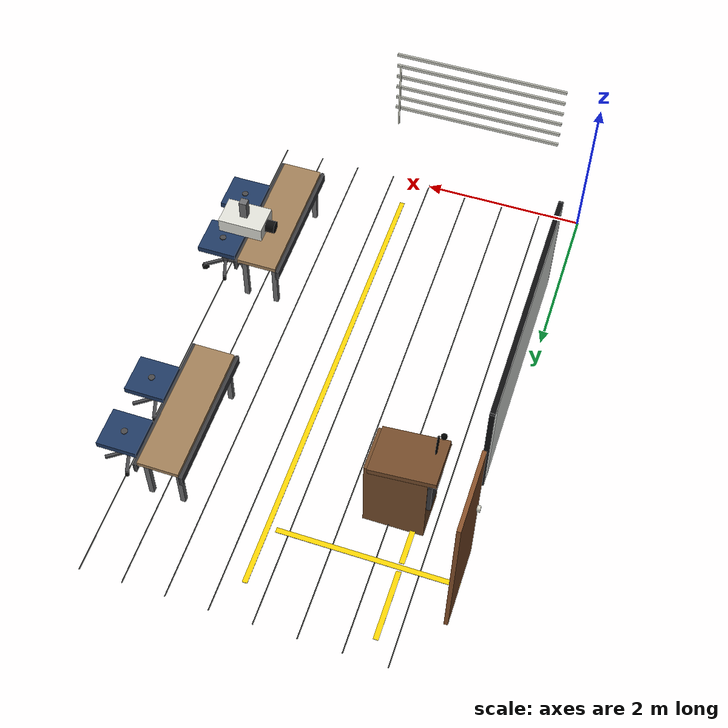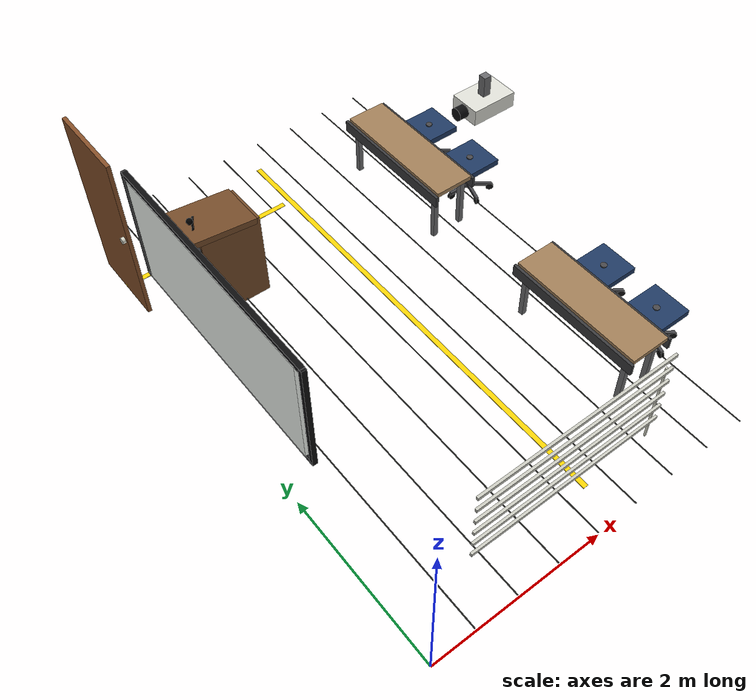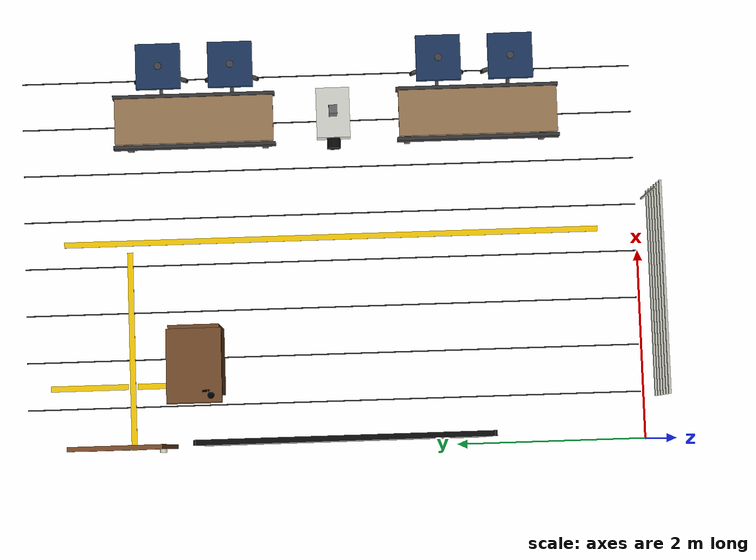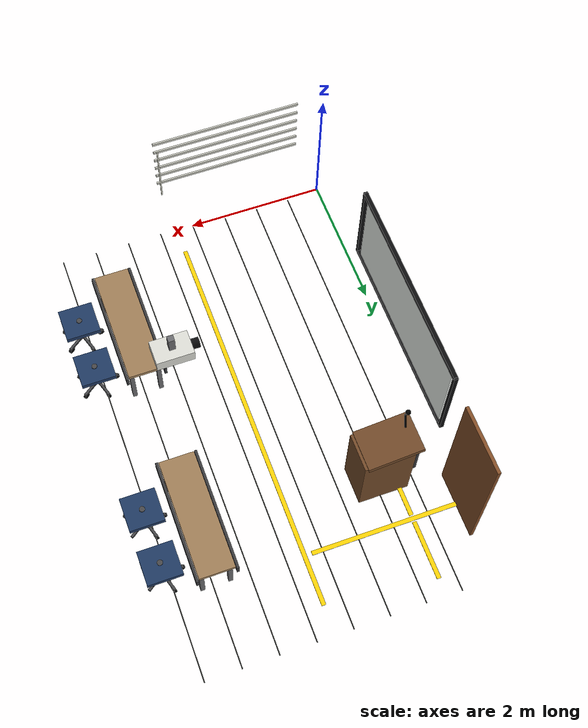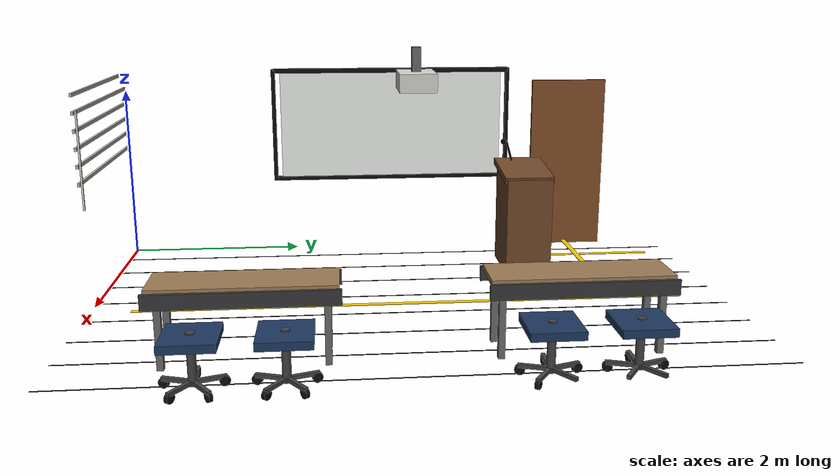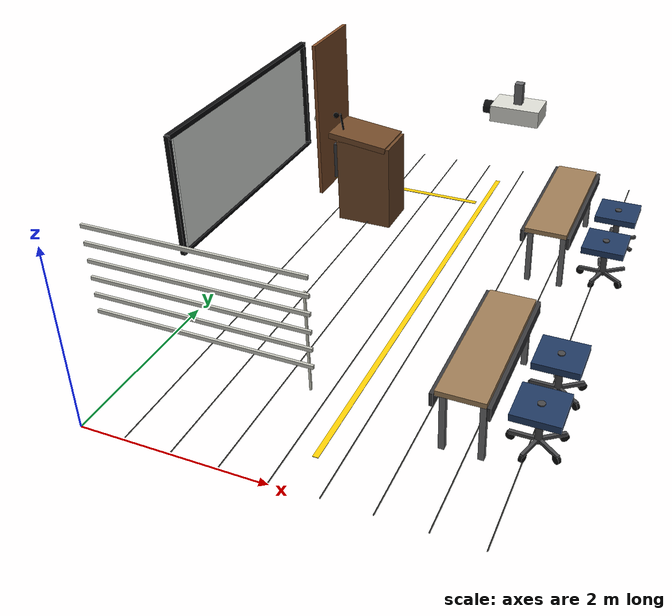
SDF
<sdf version="1.10">
 <model name="room_427_furnishings">
  <static>true</static>
  <link name="tile_seam_x_1">
   <pose>0.5 3.27 0.032 0 0 0</pose>
   <visual name="visual">
    <geometry><box><size>0.012 6.54 0.004</size></box></geometry>
    <material>
     <ambient>0.13 0.13 0.13 1</ambient>
     <diffuse>0.16 0.16 0.15 1</diffuse>
     <specular>0.04 0.04 0.04 1</specular>
    </material>
   </visual>
  </link>
  <link name="tile_seam_x_2">
   <pose>1 3.27 0.032 0 0 0</pose>
   <visual name="visual">
    <geometry><box><size>0.012 6.54 0.004</size></box></geometry>
    <material>
     <ambient>0.13 0.13 0.13 1</ambient>
     <diffuse>0.16 0.16 0.15 1</diffuse>
     <specular>0.04 0.04 0.04 1</specular>
    </material>
   </visual>
  </link>
  <link name="tile_seam_x_3">
   <pose>1.5 3.27 0.032 0 0 0</pose>
   <visual name="visual">
    <geometry><box><size>0.012 6.54 0.004</size></box></geometry>
    <material>
     <ambient>0.13 0.13 0.13 1</ambient>
     <diffuse>0.16 0.16 0.15 1</diffuse>
     <specular>0.04 0.04 0.04 1</specular>
    </material>
   </visual>
  </link>
  <link name="tile_seam_x_4">
   <pose>2 3.27 0.032 0 0 0</pose>
   <visual name="visual">
    <geometry><box><size>0.012 6.54 0.004</size></box></geometry>
    <material>
     <ambient>0.13 0.13 0.13 1</ambient>
     <diffuse>0.16 0.16 0.15 1</diffuse>
     <specular>0.04 0.04 0.04 1</specular>
    </material>
   </visual>
  </link>
  <link name="tile_seam_x_5">
   <pose>2.5 3.27 0.032 0 0 0</pose>
   <visual name="visual">
    <geometry><box><size>0.012 6.54 0.004</size></box></geometry>
    <material>
     <ambient>0.13 0.13 0.13 1</ambient>
     <diffuse>0.16 0.16 0.15 1</diffuse>
     <specular>0.04 0.04 0.04 1</specular>
    </material>
   </visual>
  </link>
  <link name="tile_seam_x_6">
   <pose>3 3.27 0.032 0 0 0</pose>
   <visual name="visual">
    <geometry><box><size>0.012 6.54 0.004</size></box></geometry>
    <material>
     <ambient>0.13 0.13 0.13 1</ambient>
     <diffuse>0.16 0.16 0.15 1</diffuse>
     <specular>0.04 0.04 0.04 1</specular>
    </material>
   </visual>
  </link>
  <link name="tile_seam_x_7">
   <pose>3.5 3.27 0.032 0 0 0</pose>
   <visual name="visual">
    <geometry><box><size>0.012 6.54 0.004</size></box></geometry>
    <material>
     <ambient>0.13 0.13 0.13 1</ambient>
     <diffuse>0.16 0.16 0.15 1</diffuse>
     <specular>0.04 0.04 0.04 1</specular>
    </material>
   </visual>
  </link>
  <link name="tile_seam_x_8">
   <pose>4 3.27 0.032 0 0 0</pose>
   <visual name="visual">
    <geometry><box><size>0.012 6.54 0.004</size></box></geometry>
    <material>
     <ambient>0.13 0.13 0.13 1</ambient>
     <diffuse>0.16 0.16 0.15 1</diffuse>
     <specular>0.04 0.04 0.04 1</specular>
    </material>
   </visual>
  </link>
  <link name="yellow_tape_front_teaching_clearance">
   <pose>2.25 3.27 0.036 0 0 1.5708</pose>
   <visual name="visual">
    <geometry><box><size>5.7 0.06 0.006</size></box></geometry>
    <material>
     <ambient>1.0 0.82 0.02 1</ambient>
     <diffuse>1.0 0.82 0.02 1</diffuse>
     <specular>0.25 0.22 0.04 1</specular>
    </material>
   </visual>
  </link>
  <link name="yellow_tape_front_door_approach">
   <pose>1.1 5.42 0.036 0 0 0</pose>
   <visual name="visual">
    <geometry><box><size>2.1 0.06 0.006</size></box></geometry>
    <material>
     <ambient>1.0 0.82 0.02 1</ambient>
     <diffuse>1.0 0.82 0.02 1</diffuse>
     <specular>0.25 0.22 0.04 1</specular>
    </material>
   </visual>
  </link>
  <link name="yellow_tape_front_door_side_mark_a">
   <pose>0.72 4.96 0.036 0 0 1.5708</pose>
   <visual name="visual">
    <geometry><box><size>0.82 0.06 0.006</size></box></geometry>
    <material>
     <ambient>1.0 0.82 0.02 1</ambient>
     <diffuse>1.0 0.82 0.02 1</diffuse>
     <specular>0.25 0.22 0.04 1</specular>
    </material>
   </visual>
  </link>
  <link name="yellow_tape_front_door_side_mark_b">
   <pose>0.72 5.88 0.036 0 0 1.5708</pose>
   <visual name="visual">
    <geometry><box><size>0.82 0.06 0.006</size></box></geometry>
    <material>
     <ambient>1.0 0.82 0.02 1</ambient>
     <diffuse>1.0 0.82 0.02 1</diffuse>
     <specular>0.25 0.22 0.04 1</specular>
    </material>
   </visual>
  </link>
  <link name="blind_1_1">
   <pose>1.45 0.085 2.25 0 0 0</pose>
   <visual name="visual">
    <geometry><box><size>2.06 0.024 0.035</size></box></geometry>
    <material>
     <ambient>0.72 0.72 0.68 1</ambient>
     <diffuse>0.78 0.78 0.74 1</diffuse>
     <specular>0.12 0.12 0.12 1</specular>
    </material>
   </visual>
  </link>
  <link name="blind_1_2">
   <pose>1.45 0.085 2.08 0 0 0</pose>
   <visual name="visual">
    <geometry><box><size>2.06 0.024 0.035</size></box></geometry>
    <material>
     <ambient>0.72 0.72 0.68 1</ambient>
     <diffuse>0.78 0.78 0.74 1</diffuse>
     <specular>0.12 0.12 0.12 1</specular>
    </material>
   </visual>
  </link>
  <link name="blind_1_3">
   <pose>1.45 0.085 1.91 0 0 0</pose>
   <visual name="visual">
    <geometry><box><size>2.06 0.024 0.035</size></box></geometry>
    <material>
     <ambient>0.72 0.72 0.68 1</ambient>
     <diffuse>0.78 0.78 0.74 1</diffuse>
     <specular>0.12 0.12 0.12 1</specular>
    </material>
   </visual>
  </link>
  <link name="blind_1_4">
   <pose>1.45 0.085 1.74 0 0 0</pose>
   <visual name="visual">
    <geometry><box><size>2.06 0.024 0.035</size></box></geometry>
    <material>
     <ambient>0.72 0.72 0.68 1</ambient>
     <diffuse>0.78 0.78 0.74 1</diffuse>
     <specular>0.12 0.12 0.12 1</specular>
    </material>
   </visual>
  </link>
  <link name="blind_1_5">
   <pose>1.45 0.085 1.57 0 0 0</pose>
   <visual name="visual">
    <geometry><box><size>2.06 0.024 0.035</size></box></geometry>
    <material>
     <ambient>0.72 0.72 0.68 1</ambient>
     <diffuse>0.78 0.78 0.74 1</diffuse>
     <specular>0.12 0.12 0.12 1</specular>
    </material>
   </visual>
  </link>
  <link name="blind_1_6">
   <pose>1.45 0.085 1.4 0 0 0</pose>
   <visual name="visual">
    <geometry><box><size>2.06 0.024 0.035</size></box></geometry>
    <material>
     <ambient>0.72 0.72 0.68 1</ambient>
     <diffuse>0.78 0.78 0.74 1</diffuse>
     <specular>0.12 0.12 0.12 1</specular>
    </material>
   </visual>
  </link>
  <link name="blind_1_pull">
   <pose>2.43 0.105 1.62 0 0 0</pose>
   <visual name="visual">
    <geometry><box><size>0.018 0.018 0.96</size></box></geometry>
    <material>
     <ambient>0.78 0.78 0.72 1</ambient>
     <diffuse>0.86 0.86 0.80 1</diffuse>
     <specular>0.45 0.45 0.40 1</specular>
    </material>
   </visual>
  </link>
  <link name="projector_screen_surface">
   <pose>0.085 3.2 1.58 0 0 0</pose>
   <visual name="visual">
    <geometry><box><size>0.035 2.7 1.28</size></box></geometry>
    <material>
     <ambient>0.88 0.90 0.88 1</ambient>
     <diffuse>0.96 0.98 0.96 1</diffuse>
     <specular>0.18 0.18 0.18 1</specular>
    </material>
   </visual>
  </link>
  <link name="projector_screen_top_rail">
   <pose>0.1 3.2 2.24 0 0 0</pose>
   <visual name="visual">
    <geometry><box><size>0.055 2.86 0.055</size></box></geometry>
    <material>
     <ambient>0.04 0.04 0.045 1</ambient>
     <diffuse>0.05 0.05 0.055 1</diffuse>
     <specular>0.12 0.12 0.12 1</specular>
    </material>
   </visual>
  </link>
  <link name="projector_screen_bottom_rail">
   <pose>0.1 3.2 0.92 0 0 0</pose>
   <visual name="visual">
    <geometry><box><size>0.055 2.86 0.045</size></box></geometry>
    <material>
     <ambient>0.04 0.04 0.045 1</ambient>
     <diffuse>0.05 0.05 0.055 1</diffuse>
     <specular>0.12 0.12 0.12 1</specular>
    </material>
   </visual>
  </link>
  <link name="projector_screen_left_rail">
   <pose>0.1 1.77 1.58 0 0 0</pose>
   <visual name="visual">
    <geometry><box><size>0.055 0.045 1.36</size></box></geometry>
    <material>
     <ambient>0.04 0.04 0.045 1</ambient>
     <diffuse>0.05 0.05 0.055 1</diffuse>
     <specular>0.12 0.12 0.12 1</specular>
    </material>
   </visual>
  </link>
  <link name="projector_screen_right_rail">
   <pose>0.1 4.63 1.58 0 0 0</pose>
   <visual name="visual">
    <geometry><box><size>0.055 0.045 1.36</size></box></geometry>
    <material>
     <ambient>0.04 0.04 0.045 1</ambient>
     <diffuse>0.05 0.05 0.055 1</diffuse>
     <specular>0.12 0.12 0.12 1</specular>
    </material>
   </visual>
  </link>
  <link name="professor_podium_body">
   <pose>0.95 4.7 0.55 0 0 0</pose>
   <collision name="collision"><geometry><box><size>0.7 0.52 1.1</size></box></geometry></collision>
   <visual name="visual">
    <geometry><box><size>0.7 0.52 1.1</size></box></geometry>
    <material>
     <ambient>0.36 0.22 0.12 1</ambient>
     <diffuse>0.45 0.29 0.16 1</diffuse>
     <specular>0.18 0.12 0.08 1</specular>
    </material>
   </visual>
  </link>
  <link name="professor_podium_sloped_top">
   <pose>0.88 4.7 1.13 0 0.12 0</pose>
   <collision name="collision"><geometry><box><size>0.76 0.56 0.075</size></box></geometry></collision>
   <visual name="visual">
    <geometry><box><size>0.76 0.56 0.075</size></box></geometry>
    <material>
     <ambient>0.36 0.22 0.12 1</ambient>
     <diffuse>0.45 0.29 0.16 1</diffuse>
     <specular>0.18 0.12 0.08 1</specular>
    </material>
   </visual>
  </link>
  <link name="professor_podium_panel">
   <pose>0.58 4.7 0.82 0 0 0</pose>
   <visual name="visual">
    <geometry><box><size>0.055 0.5 0.46</size></box></geometry>
    <material>
     <ambient>0.18 0.18 0.19 1</ambient>
     <diffuse>0.22 0.22 0.23 1</diffuse>
     <specular>0.35 0.35 0.35 1</specular>
    </material>
   </visual>
  </link>
  <link name="podium_microphone_stem">
   <pose>0.62 4.58 1.3 0.28 0 0</pose>
   <visual name="visual">
    <geometry><cylinder><radius>0.012</radius><length>0.28</length></cylinder></geometry>
    <material>
     <ambient>0.0 0.0 0.0 1</ambient>
     <diffuse>0.0 0.0 0.0 1</diffuse>
     <specular>0.05 0.05 0.05 1</specular>
    </material>
   </visual>
  </link>
  <link name="podium_microphone_head">
   <pose>0.57 4.52 1.42 0 0 0</pose>
   <visual name="visual">
    <geometry><sphere><radius>0.035</radius></sphere></geometry>
    <material>
     <ambient>0.0 0.0 0.0 1</ambient>
     <diffuse>0.0 0.0 0.0 1</diffuse>
     <specular>0.05 0.05 0.05 1</specular>
    </material>
   </visual>
  </link>
  <link name="ceiling_projector_body">
   <pose>3.2 3.22 2.43 0 0 0</pose>
   <visual name="visual">
    <geometry><box><size>0.48 0.32 0.16</size></box></geometry>
    <material>
     <ambient>0.78 0.78 0.76 1</ambient>
     <diffuse>0.86 0.86 0.83 1</diffuse>
     <specular>0.35 0.35 0.34 1</specular>
    </material>
   </visual>
  </link>
  <link name="ceiling_projector_lens">
   <pose>2.92 3.22 2.43 0 1.5708 0</pose>
   <visual name="visual">
    <geometry><cylinder><radius>0.065</radius><length>0.12</length></cylinder></geometry>
    <material>
     <ambient>0.04 0.04 0.045 1</ambient>
     <diffuse>0.05 0.05 0.055 1</diffuse>
     <specular>0.12 0.12 0.12 1</specular>
    </material>
   </visual>
  </link>
  <link name="ceiling_projector_mount">
   <pose>3.2 3.22 2.58 0 0 0</pose>
   <visual name="visual">
    <geometry><box><size>0.08 0.08 0.28</size></box></geometry>
    <material>
     <ambient>0.36 0.36 0.37 1</ambient>
     <diffuse>0.42 0.42 0.43 1</diffuse>
     <specular>0.45 0.45 0.45 1</specular>
    </material>
   </visual>
  </link>
  <link name="front_wall_demo_door_panel">
   <pose>0.075 5.42 1.05 0 0 0</pose>
   <visual name="visual">
    <geometry><box><size>0.045 0.92 2.1</size></box></geometry>
    <material>
     <ambient>0.42 0.25 0.13 1</ambient>
     <diffuse>0.52 0.31 0.16 1</diffuse>
     <specular>0.16 0.10 0.06 1</specular>
    </material>
   </visual>
  </link>
  <link name="front_wall_demo_door_handle">
   <pose>0.035 5.03 1.08 0 1.5708 0</pose>
   <visual name="visual">
    <geometry><cylinder><radius>0.035</radius><length>0.04</length></cylinder></geometry>
    <material>
     <ambient>0.78 0.78 0.72 1</ambient>
     <diffuse>0.86 0.86 0.80 1</diffuse>
     <specular>0.45 0.45 0.40 1</specular>
    </material>
   </visual>
  </link>
  <link name="fixed_student_bench_front_right_top">
   <pose>3.45 1.7 0.73 0 0 1.5708</pose>
   <collision name="collision"><geometry><box><size>1.65 0.48 0.055</size></box></geometry></collision>
   <visual name="visual">
    <geometry><box><size>1.65 0.48 0.055</size></box></geometry>
    <material>
     <ambient>0.58 0.46 0.32 1</ambient>
     <diffuse>0.62 0.49 0.34 1</diffuse>
     <specular>0.22 0.18 0.12 1</specular>
    </material>
   </visual>
  </link>
  <link name="fixed_student_bench_front_right_front_apron">
   <pose>3.185 1.7 0.66 0 0 1.5708</pose>
   <collision name="collision"><geometry><box><size>1.69 0.035 0.14</size></box></geometry></collision>
   <visual name="visual">
    <geometry><box><size>1.69 0.035 0.14</size></box></geometry>
    <material>
     <ambient>0.18 0.18 0.19 1</ambient>
     <diffuse>0.22 0.22 0.23 1</diffuse>
     <specular>0.35 0.35 0.35 1</specular>
    </material>
   </visual>
  </link>
  <link name="fixed_student_bench_front_right_back_apron">
   <pose>3.715 1.7 0.66 0 0 1.5708</pose>
   <collision name="collision"><geometry><box><size>1.69 0.035 0.14</size></box></geometry></collision>
   <visual name="visual">
    <geometry><box><size>1.69 0.035 0.14</size></box></geometry>
    <material>
     <ambient>0.18 0.18 0.19 1</ambient>
     <diffuse>0.22 0.22 0.23 1</diffuse>
     <specular>0.35 0.35 0.35 1</specular>
    </material>
   </visual>
  </link>
  <link name="fixed_student_bench_front_right_leg_1">
   <pose>3.26 2.42 0.36 0 0 1.5708</pose>
   <collision name="collision"><geometry><box><size>0.06 0.06 0.68</size></box></geometry></collision>
   <visual name="visual">
    <geometry><box><size>0.06 0.06 0.68</size></box></geometry>
    <material>
     <ambient>0.36 0.36 0.37 1</ambient>
     <diffuse>0.42 0.42 0.43 1</diffuse>
     <specular>0.45 0.45 0.45 1</specular>
    </material>
   </visual>
  </link>
  <link name="fixed_student_bench_front_right_leg_2">
   <pose>3.64 2.42 0.36 0 0 1.5708</pose>
   <collision name="collision"><geometry><box><size>0.06 0.06 0.68</size></box></geometry></collision>
   <visual name="visual">
    <geometry><box><size>0.06 0.06 0.68</size></box></geometry>
    <material>
     <ambient>0.36 0.36 0.37 1</ambient>
     <diffuse>0.42 0.42 0.43 1</diffuse>
     <specular>0.45 0.45 0.45 1</specular>
    </material>
   </visual>
  </link>
  <link name="fixed_student_bench_front_right_leg_3">
   <pose>3.26 0.98 0.36 0 0 1.5708</pose>
   <collision name="collision"><geometry><box><size>0.06 0.06 0.68</size></box></geometry></collision>
   <visual name="visual">
    <geometry><box><size>0.06 0.06 0.68</size></box></geometry>
    <material>
     <ambient>0.36 0.36 0.37 1</ambient>
     <diffuse>0.42 0.42 0.43 1</diffuse>
     <specular>0.45 0.45 0.45 1</specular>
    </material>
   </visual>
  </link>
  <link name="fixed_student_bench_front_right_leg_4">
   <pose>3.64 0.98 0.36 0 0 1.5708</pose>
   <collision name="collision"><geometry><box><size>0.06 0.06 0.68</size></box></geometry></collision>
   <visual name="visual">
    <geometry><box><size>0.06 0.06 0.68</size></box></geometry>
    <material>
     <ambient>0.36 0.36 0.37 1</ambient>
     <diffuse>0.42 0.42 0.43 1</diffuse>
     <specular>0.45 0.45 0.45 1</specular>
    </material>
   </visual>
  </link>
  <link name="plastic_wheel_chair_1_1_seat">
   <pose>4.07 1.32 0.48 0 0 3.1416</pose>
   <collision name="collision"><geometry><box><size>0.48 0.47 0.075</size></box></geometry></collision>
   <visual name="visual">
    <geometry><box><size>0.48 0.47 0.075</size></box></geometry>
    <material>
     <ambient>0.10 0.17 0.28 1</ambient>
     <diffuse>0.12 0.22 0.38 1</diffuse>
     <specular>0.18 0.2 0.24 1</specular>
    </material>
   </visual>
  </link>
  <link name="plastic_wheel_chair_1_1_gas_lift">
   <pose>4.07 1.32 0.3 0 0 3.1416</pose>
   <collision name="collision">
    <geometry><cylinder><radius>0.038</radius><length>0.46</length></cylinder></geometry>
   </collision>
   <visual name="visual">
    <geometry><cylinder><radius>0.038</radius><length>0.46</length></cylinder></geometry>
    <material>
     <ambient>0.20 0.20 0.21 1</ambient>
     <diffuse>0.27 0.27 0.28 1</diffuse>
     <specular>0.35 0.35 0.35 1</specular>
    </material>
   </visual>
  </link>
  <link name="plastic_wheel_chair_1_1_star_arm_1">
   <pose>3.94 1.32 0.1 0 0 3.1416</pose>
   <collision name="collision"><geometry><box><size>0.3 0.035 0.035</size></box></geometry></collision>
   <visual name="visual">
    <geometry><box><size>0.3 0.035 0.035</size></box></geometry>
    <material>
     <ambient>0.20 0.20 0.21 1</ambient>
     <diffuse>0.27 0.27 0.28 1</diffuse>
     <specular>0.35 0.35 0.35 1</specular>
    </material>
   </visual>
  </link>
  <link name="plastic_wheel_chair_1_1_caster_1">
   <pose>3.81 1.32 0.065 1.5708 0 3.1416</pose>
   <collision name="collision">
    <geometry><cylinder><radius>0.045</radius><length>0.035</length></cylinder></geometry>
   </collision>
   <visual name="visual">
    <geometry><cylinder><radius>0.045</radius><length>0.035</length></cylinder></geometry>
    <material>
     <ambient>0.035 0.035 0.035 1</ambient>
     <diffuse>0.045 0.045 0.045 1</diffuse>
     <specular>0.08 0.08 0.08 1</specular>
    </material>
   </visual>
  </link>
  <link name="plastic_wheel_chair_1_1_star_arm_2">
   <pose>4.0298 1.1964 0.1 0 0 4.3982</pose>
   <collision name="collision"><geometry><box><size>0.3 0.035 0.035</size></box></geometry></collision>
   <visual name="visual">
    <geometry><box><size>0.3 0.035 0.035</size></box></geometry>
    <material>
     <ambient>0.20 0.20 0.21 1</ambient>
     <diffuse>0.27 0.27 0.28 1</diffuse>
     <specular>0.35 0.35 0.35 1</specular>
    </material>
   </visual>
  </link>
  <link name="plastic_wheel_chair_1_1_caster_2">
   <pose>3.9896 1.0727 0.065 1.5708 0 4.3982</pose>
   <collision name="collision">
    <geometry><cylinder><radius>0.045</radius><length>0.035</length></cylinder></geometry>
   </collision>
   <visual name="visual">
    <geometry><cylinder><radius>0.045</radius><length>0.035</length></cylinder></geometry>
    <material>
     <ambient>0.035 0.035 0.035 1</ambient>
     <diffuse>0.045 0.045 0.045 1</diffuse>
     <specular>0.08 0.08 0.08 1</specular>
    </material>
   </visual>
  </link>
  <link name="plastic_wheel_chair_1_1_star_arm_3">
   <pose>4.1752 1.2436 0.1 0 0 5.6549</pose>
   <collision name="collision"><geometry><box><size>0.3 0.035 0.035</size></box></geometry></collision>
   <visual name="visual">
    <geometry><box><size>0.3 0.035 0.035</size></box></geometry>
    <material>
     <ambient>0.20 0.20 0.21 1</ambient>
     <diffuse>0.27 0.27 0.28 1</diffuse>
     <specular>0.35 0.35 0.35 1</specular>
    </material>
   </visual>
  </link>
  <link name="plastic_wheel_chair_1_1_caster_3">
   <pose>4.2803 1.1672 0.065 1.5708 0 5.6549</pose>
   <collision name="collision">
    <geometry><cylinder><radius>0.045</radius><length>0.035</length></cylinder></geometry>
   </collision>
   <visual name="visual">
    <geometry><cylinder><radius>0.045</radius><length>0.035</length></cylinder></geometry>
    <material>
     <ambient>0.035 0.035 0.035 1</ambient>
     <diffuse>0.045 0.045 0.045 1</diffuse>
     <specular>0.08 0.08 0.08 1</specular>
    </material>
   </visual>
  </link>
  <link name="plastic_wheel_chair_1_1_star_arm_4">
   <pose>4.1752 1.3964 0.1 0 0 6.9115</pose>
   <collision name="collision"><geometry><box><size>0.3 0.035 0.035</size></box></geometry></collision>
   <visual name="visual">
    <geometry><box><size>0.3 0.035 0.035</size></box></geometry>
    <material>
     <ambient>0.20 0.20 0.21 1</ambient>
     <diffuse>0.27 0.27 0.28 1</diffuse>
     <specular>0.35 0.35 0.35 1</specular>
    </material>
   </visual>
  </link>
  <link name="plastic_wheel_chair_1_1_caster_4">
   <pose>4.2803 1.4728 0.065 1.5708 0 6.9115</pose>
   <collision name="collision">
    <geometry><cylinder><radius>0.045</radius><length>0.035</length></cylinder></geometry>
   </collision>
   <visual name="visual">
    <geometry><cylinder><radius>0.045</radius><length>0.035</length></cylinder></geometry>
    <material>
     <ambient>0.035 0.035 0.035 1</ambient>
     <diffuse>0.045 0.045 0.045 1</diffuse>
     <specular>0.08 0.08 0.08 1</specular>
    </material>
   </visual>
  </link>
  <link name="plastic_wheel_chair_1_1_star_arm_5">
   <pose>4.0298 1.4436 0.1 0 0 8.1681</pose>
   <collision name="collision"><geometry><box><size>0.3 0.035 0.035</size></box></geometry></collision>
   <visual name="visual">
    <geometry><box><size>0.3 0.035 0.035</size></box></geometry>
    <material>
     <ambient>0.20 0.20 0.21 1</ambient>
     <diffuse>0.27 0.27 0.28 1</diffuse>
     <specular>0.35 0.35 0.35 1</specular>
    </material>
   </visual>
  </link>
  <link name="plastic_wheel_chair_1_1_caster_5">
   <pose>3.9897 1.5673 0.065 1.5708 0 8.1681</pose>
   <collision name="collision">
    <geometry><cylinder><radius>0.045</radius><length>0.035</length></cylinder></geometry>
   </collision>
   <visual name="visual">
    <geometry><cylinder><radius>0.045</radius><length>0.035</length></cylinder></geometry>
    <material>
     <ambient>0.035 0.035 0.035 1</ambient>
     <diffuse>0.045 0.045 0.045 1</diffuse>
     <specular>0.08 0.08 0.08 1</specular>
    </material>
   </visual>
  </link>
  <link name="plastic_wheel_chair_1_2_seat">
   <pose>4.07 2.08 0.48 0 0 3.1416</pose>
   <collision name="collision"><geometry><box><size>0.48 0.47 0.075</size></box></geometry></collision>
   <visual name="visual">
    <geometry><box><size>0.48 0.47 0.075</size></box></geometry>
    <material>
     <ambient>0.10 0.17 0.28 1</ambient>
     <diffuse>0.12 0.22 0.38 1</diffuse>
     <specular>0.18 0.2 0.24 1</specular>
    </material>
   </visual>
  </link>
  <link name="plastic_wheel_chair_1_2_gas_lift">
   <pose>4.07 2.08 0.3 0 0 3.1416</pose>
   <collision name="collision">
    <geometry><cylinder><radius>0.038</radius><length>0.46</length></cylinder></geometry>
   </collision>
   <visual name="visual">
    <geometry><cylinder><radius>0.038</radius><length>0.46</length></cylinder></geometry>
    <material>
     <ambient>0.20 0.20 0.21 1</ambient>
     <diffuse>0.27 0.27 0.28 1</diffuse>
     <specular>0.35 0.35 0.35 1</specular>
    </material>
   </visual>
  </link>
  <link name="plastic_wheel_chair_1_2_star_arm_1">
   <pose>3.94 2.08 0.1 0 0 3.1416</pose>
   <collision name="collision"><geometry><box><size>0.3 0.035 0.035</size></box></geometry></collision>
   <visual name="visual">
    <geometry><box><size>0.3 0.035 0.035</size></box></geometry>
    <material>
     <ambient>0.20 0.20 0.21 1</ambient>
     <diffuse>0.27 0.27 0.28 1</diffuse>
     <specular>0.35 0.35 0.35 1</specular>
    </material>
   </visual>
  </link>
  <link name="plastic_wheel_chair_1_2_caster_1">
   <pose>3.81 2.08 0.065 1.5708 0 3.1416</pose>
   <collision name="collision">
    <geometry><cylinder><radius>0.045</radius><length>0.035</length></cylinder></geometry>
   </collision>
   <visual name="visual">
    <geometry><cylinder><radius>0.045</radius><length>0.035</length></cylinder></geometry>
    <material>
     <ambient>0.035 0.035 0.035 1</ambient>
     <diffuse>0.045 0.045 0.045 1</diffuse>
     <specular>0.08 0.08 0.08 1</specular>
    </material>
   </visual>
  </link>
  <link name="plastic_wheel_chair_1_2_star_arm_2">
   <pose>4.0298 1.9564 0.1 0 0 4.3982</pose>
   <collision name="collision"><geometry><box><size>0.3 0.035 0.035</size></box></geometry></collision>
   <visual name="visual">
    <geometry><box><size>0.3 0.035 0.035</size></box></geometry>
    <material>
     <ambient>0.20 0.20 0.21 1</ambient>
     <diffuse>0.27 0.27 0.28 1</diffuse>
     <specular>0.35 0.35 0.35 1</specular>
    </material>
   </visual>
  </link>
  <link name="plastic_wheel_chair_1_2_caster_2">
   <pose>3.9896 1.8327 0.065 1.5708 0 4.3982</pose>
   <collision name="collision">
    <geometry><cylinder><radius>0.045</radius><length>0.035</length></cylinder></geometry>
   </collision>
   <visual name="visual">
    <geometry><cylinder><radius>0.045</radius><length>0.035</length></cylinder></geometry>
    <material>
     <ambient>0.035 0.035 0.035 1</ambient>
     <diffuse>0.045 0.045 0.045 1</diffuse>
     <specular>0.08 0.08 0.08 1</specular>
    </material>
   </visual>
  </link>
  <link name="plastic_wheel_chair_1_2_star_arm_3">
   <pose>4.1752 2.0036 0.1 0 0 5.6549</pose>
   <collision name="collision"><geometry><box><size>0.3 0.035 0.035</size></box></geometry></collision>
   <visual name="visual">
    <geometry><box><size>0.3 0.035 0.035</size></box></geometry>
    <material>
     <ambient>0.20 0.20 0.21 1</ambient>
     <diffuse>0.27 0.27 0.28 1</diffuse>
     <specular>0.35 0.35 0.35 1</specular>
    </material>
   </visual>
  </link>
  <link name="plastic_wheel_chair_1_2_caster_3">
   <pose>4.2803 1.9272 0.065 1.5708 0 5.6549</pose>
   <collision name="collision">
    <geometry><cylinder><radius>0.045</radius><length>0.035</length></cylinder></geometry>
   </collision>
   <visual name="visual">
    <geometry><cylinder><radius>0.045</radius><length>0.035</length></cylinder></geometry>
    <material>
     <ambient>0.035 0.035 0.035 1</ambient>
     <diffuse>0.045 0.045 0.045 1</diffuse>
     <specular>0.08 0.08 0.08 1</specular>
    </material>
   </visual>
  </link>
  <link name="plastic_wheel_chair_1_2_star_arm_4">
   <pose>4.1752 2.1564 0.1 0 0 6.9115</pose>
   <collision name="collision"><geometry><box><size>0.3 0.035 0.035</size></box></geometry></collision>
   <visual name="visual">
    <geometry><box><size>0.3 0.035 0.035</size></box></geometry>
    <material>
     <ambient>0.20 0.20 0.21 1</ambient>
     <diffuse>0.27 0.27 0.28 1</diffuse>
     <specular>0.35 0.35 0.35 1</specular>
    </material>
   </visual>
  </link>
  <link name="plastic_wheel_chair_1_2_caster_4">
   <pose>4.2803 2.2328 0.065 1.5708 0 6.9115</pose>
   <collision name="collision">
    <geometry><cylinder><radius>0.045</radius><length>0.035</length></cylinder></geometry>
   </collision>
   <visual name="visual">
    <geometry><cylinder><radius>0.045</radius><length>0.035</length></cylinder></geometry>
    <material>
     <ambient>0.035 0.035 0.035 1</ambient>
     <diffuse>0.045 0.045 0.045 1</diffuse>
     <specular>0.08 0.08 0.08 1</specular>
    </material>
   </visual>
  </link>
  <link name="plastic_wheel_chair_1_2_star_arm_5">
   <pose>4.0298 2.2036 0.1 0 0 8.1681</pose>
   <collision name="collision"><geometry><box><size>0.3 0.035 0.035</size></box></geometry></collision>
   <visual name="visual">
    <geometry><box><size>0.3 0.035 0.035</size></box></geometry>
    <material>
     <ambient>0.20 0.20 0.21 1</ambient>
     <diffuse>0.27 0.27 0.28 1</diffuse>
     <specular>0.35 0.35 0.35 1</specular>
    </material>
   </visual>
  </link>
  <link name="plastic_wheel_chair_1_2_caster_5">
   <pose>3.9897 2.3273 0.065 1.5708 0 8.1681</pose>
   <collision name="collision">
    <geometry><cylinder><radius>0.045</radius><length>0.035</length></cylinder></geometry>
   </collision>
   <visual name="visual">
    <geometry><cylinder><radius>0.045</radius><length>0.035</length></cylinder></geometry>
    <material>
     <ambient>0.035 0.035 0.035 1</ambient>
     <diffuse>0.045 0.045 0.045 1</diffuse>
     <specular>0.08 0.08 0.08 1</specular>
    </material>
   </visual>
  </link>
  <link name="fixed_student_bench_front_left_top">
   <pose>3.45 4.66 0.73 0 0 1.5708</pose>
   <collision name="collision"><geometry><box><size>1.65 0.48 0.055</size></box></geometry></collision>
   <visual name="visual">
    <geometry><box><size>1.65 0.48 0.055</size></box></geometry>
    <material>
     <ambient>0.58 0.46 0.32 1</ambient>
     <diffuse>0.62 0.49 0.34 1</diffuse>
     <specular>0.22 0.18 0.12 1</specular>
    </material>
   </visual>
  </link>
  <link name="fixed_student_bench_front_left_front_apron">
   <pose>3.185 4.66 0.66 0 0 1.5708</pose>
   <collision name="collision"><geometry><box><size>1.69 0.035 0.14</size></box></geometry></collision>
   <visual name="visual">
    <geometry><box><size>1.69 0.035 0.14</size></box></geometry>
    <material>
     <ambient>0.18 0.18 0.19 1</ambient>
     <diffuse>0.22 0.22 0.23 1</diffuse>
     <specular>0.35 0.35 0.35 1</specular>
    </material>
   </visual>
  </link>
  <link name="fixed_student_bench_front_left_back_apron">
   <pose>3.715 4.66 0.66 0 0 1.5708</pose>
   <collision name="collision"><geometry><box><size>1.69 0.035 0.14</size></box></geometry></collision>
   <visual name="visual">
    <geometry><box><size>1.69 0.035 0.14</size></box></geometry>
    <material>
     <ambient>0.18 0.18 0.19 1</ambient>
     <diffuse>0.22 0.22 0.23 1</diffuse>
     <specular>0.35 0.35 0.35 1</specular>
    </material>
   </visual>
  </link>
  <link name="fixed_student_bench_front_left_leg_1">
   <pose>3.26 5.38 0.36 0 0 1.5708</pose>
   <collision name="collision"><geometry><box><size>0.06 0.06 0.68</size></box></geometry></collision>
   <visual name="visual">
    <geometry><box><size>0.06 0.06 0.68</size></box></geometry>
    <material>
     <ambient>0.36 0.36 0.37 1</ambient>
     <diffuse>0.42 0.42 0.43 1</diffuse>
     <specular>0.45 0.45 0.45 1</specular>
    </material>
   </visual>
  </link>
  <link name="fixed_student_bench_front_left_leg_2">
   <pose>3.64 5.38 0.36 0 0 1.5708</pose>
   <collision name="collision"><geometry><box><size>0.06 0.06 0.68</size></box></geometry></collision>
   <visual name="visual">
    <geometry><box><size>0.06 0.06 0.68</size></box></geometry>
    <material>
     <ambient>0.36 0.36 0.37 1</ambient>
     <diffuse>0.42 0.42 0.43 1</diffuse>
     <specular>0.45 0.45 0.45 1</specular>
    </material>
   </visual>
  </link>
  <link name="fixed_student_bench_front_left_leg_3">
   <pose>3.26 3.94 0.36 0 0 1.5708</pose>
   <collision name="collision"><geometry><box><size>0.06 0.06 0.68</size></box></geometry></collision>
   <visual name="visual">
    <geometry><box><size>0.06 0.06 0.68</size></box></geometry>
    <material>
     <ambient>0.36 0.36 0.37 1</ambient>
     <diffuse>0.42 0.42 0.43 1</diffuse>
     <specular>0.45 0.45 0.45 1</specular>
    </material>
   </visual>
  </link>
  <link name="fixed_student_bench_front_left_leg_4">
   <pose>3.64 3.94 0.36 0 0 1.5708</pose>
   <collision name="collision"><geometry><box><size>0.06 0.06 0.68</size></box></geometry></collision>
   <visual name="visual">
    <geometry><box><size>0.06 0.06 0.68</size></box></geometry>
    <material>
     <ambient>0.36 0.36 0.37 1</ambient>
     <diffuse>0.42 0.42 0.43 1</diffuse>
     <specular>0.45 0.45 0.45 1</specular>
    </material>
   </visual>
  </link>
  <link name="plastic_wheel_chair_2_1_seat">
   <pose>4.07 4.28 0.48 0 0 3.1416</pose>
   <collision name="collision"><geometry><box><size>0.48 0.47 0.075</size></box></geometry></collision>
   <visual name="visual">
    <geometry><box><size>0.48 0.47 0.075</size></box></geometry>
    <material>
     <ambient>0.10 0.17 0.28 1</ambient>
     <diffuse>0.12 0.22 0.38 1</diffuse>
     <specular>0.18 0.2 0.24 1</specular>
    </material>
   </visual>
  </link>
  <link name="plastic_wheel_chair_2_1_gas_lift">
   <pose>4.07 4.28 0.3 0 0 3.1416</pose>
   <collision name="collision">
    <geometry><cylinder><radius>0.038</radius><length>0.46</length></cylinder></geometry>
   </collision>
   <visual name="visual">
    <geometry><cylinder><radius>0.038</radius><length>0.46</length></cylinder></geometry>
    <material>
     <ambient>0.20 0.20 0.21 1</ambient>
     <diffuse>0.27 0.27 0.28 1</diffuse>
     <specular>0.35 0.35 0.35 1</specular>
    </material>
   </visual>
  </link>
  <link name="plastic_wheel_chair_2_1_star_arm_1">
   <pose>3.94 4.28 0.1 0 0 3.1416</pose>
   <collision name="collision"><geometry><box><size>0.3 0.035 0.035</size></box></geometry></collision>
   <visual name="visual">
    <geometry><box><size>0.3 0.035 0.035</size></box></geometry>
    <material>
     <ambient>0.20 0.20 0.21 1</ambient>
     <diffuse>0.27 0.27 0.28 1</diffuse>
     <specular>0.35 0.35 0.35 1</specular>
    </material>
   </visual>
  </link>
  <link name="plastic_wheel_chair_2_1_caster_1">
   <pose>3.81 4.28 0.065 1.5708 0 3.1416</pose>
   <collision name="collision">
    <geometry><cylinder><radius>0.045</radius><length>0.035</length></cylinder></geometry>
   </collision>
   <visual name="visual">
    <geometry><cylinder><radius>0.045</radius><length>0.035</length></cylinder></geometry>
    <material>
     <ambient>0.035 0.035 0.035 1</ambient>
     <diffuse>0.045 0.045 0.045 1</diffuse>
     <specular>0.08 0.08 0.08 1</specular>
    </material>
   </visual>
  </link>
  <link name="plastic_wheel_chair_2_1_star_arm_2">
   <pose>4.0298 4.1564 0.1 0 0 4.3982</pose>
   <collision name="collision"><geometry><box><size>0.3 0.035 0.035</size></box></geometry></collision>
   <visual name="visual">
    <geometry><box><size>0.3 0.035 0.035</size></box></geometry>
    <material>
     <ambient>0.20 0.20 0.21 1</ambient>
     <diffuse>0.27 0.27 0.28 1</diffuse>
     <specular>0.35 0.35 0.35 1</specular>
    </material>
   </visual>
  </link>
  <link name="plastic_wheel_chair_2_1_caster_2">
   <pose>3.9896 4.0327 0.065 1.5708 0 4.3982</pose>
   <collision name="collision">
    <geometry><cylinder><radius>0.045</radius><length>0.035</length></cylinder></geometry>
   </collision>
   <visual name="visual">
    <geometry><cylinder><radius>0.045</radius><length>0.035</length></cylinder></geometry>
    <material>
     <ambient>0.035 0.035 0.035 1</ambient>
     <diffuse>0.045 0.045 0.045 1</diffuse>
     <specular>0.08 0.08 0.08 1</specular>
    </material>
   </visual>
  </link>
  <link name="plastic_wheel_chair_2_1_star_arm_3">
   <pose>4.1752 4.2036 0.1 0 0 5.6549</pose>
   <collision name="collision"><geometry><box><size>0.3 0.035 0.035</size></box></geometry></collision>
   <visual name="visual">
    <geometry><box><size>0.3 0.035 0.035</size></box></geometry>
    <material>
     <ambient>0.20 0.20 0.21 1</ambient>
     <diffuse>0.27 0.27 0.28 1</diffuse>
     <specular>0.35 0.35 0.35 1</specular>
    </material>
   </visual>
  </link>
  <link name="plastic_wheel_chair_2_1_caster_3">
   <pose>4.2803 4.1272 0.065 1.5708 0 5.6549</pose>
   <collision name="collision">
    <geometry><cylinder><radius>0.045</radius><length>0.035</length></cylinder></geometry>
   </collision>
   <visual name="visual">
    <geometry><cylinder><radius>0.045</radius><length>0.035</length></cylinder></geometry>
    <material>
     <ambient>0.035 0.035 0.035 1</ambient>
     <diffuse>0.045 0.045 0.045 1</diffuse>
     <specular>0.08 0.08 0.08 1</specular>
    </material>
   </visual>
  </link>
  <link name="plastic_wheel_chair_2_1_star_arm_4">
   <pose>4.1752 4.3564 0.1 0 0 6.9115</pose>
   <collision name="collision"><geometry><box><size>0.3 0.035 0.035</size></box></geometry></collision>
   <visual name="visual">
    <geometry><box><size>0.3 0.035 0.035</size></box></geometry>
    <material>
     <ambient>0.20 0.20 0.21 1</ambient>
     <diffuse>0.27 0.27 0.28 1</diffuse>
     <specular>0.35 0.35 0.35 1</specular>
    </material>
   </visual>
  </link>
  <link name="plastic_wheel_chair_2_1_star_arm_5">
   <pose>4.0298 4.4036 0.1 0 0 8.1681</pose>
   <collision name="collision"><geometry><box><size>0.3 0.035 0.035</size></box></geometry></collision>
   <visual name="visual">
    <geometry><box><size>0.3 0.035 0.035</size></box></geometry>
    <material>
     <ambient>0.20 0.20 0.21 1</ambient>
     <diffuse>0.27 0.27 0.28 1</diffuse>
     <specular>0.35 0.35 0.35 1</specular>
    </material>
   </visual>
  </link>
  <link name="plastic_wheel_chair_2_1_caster_5">
   <pose>3.9897 4.5273 0.065 1.5708 0 8.1681</pose>
   <collision name="collision">
    <geometry><cylinder><radius>0.045</radius><length>0.035</length></cylinder></geometry>
   </collision>
   <visual name="visual">
    <geometry><cylinder><radius>0.045</radius><length>0.035</length></cylinder></geometry>
    <material>
     <ambient>0.035 0.035 0.035 1</ambient>
     <diffuse>0.045 0.045 0.045 1</diffuse>
     <specular>0.08 0.08 0.08 1</specular>
    </material>
   </visual>
  </link>
  <link name="plastic_wheel_chair_2_2_seat">
   <pose>4.07 5.04 0.48 0 0 3.1416</pose>
   <collision name="collision"><geometry><box><size>0.48 0.47 0.075</size></box></geometry></collision>
   <visual name="visual">
    <geometry><box><size>0.48 0.47 0.075</size></box></geometry>
    <material>
     <ambient>0.10 0.17 0.28 1</ambient>
     <diffuse>0.12 0.22 0.38 1</diffuse>
     <specular>0.18 0.2 0.24 1</specular>
    </material>
   </visual>
  </link>
  <link name="plastic_wheel_chair_2_2_gas_lift">
   <pose>4.07 5.04 0.3 0 0 3.1416</pose>
   <collision name="collision">
    <geometry><cylinder><radius>0.038</radius><length>0.46</length></cylinder></geometry>
   </collision>
   <visual name="visual">
    <geometry><cylinder><radius>0.038</radius><length>0.46</length></cylinder></geometry>
    <material>
     <ambient>0.20 0.20 0.21 1</ambient>
     <diffuse>0.27 0.27 0.28 1</diffuse>
     <specular>0.35 0.35 0.35 1</specular>
    </material>
   </visual>
  </link>
  <link name="plastic_wheel_chair_2_2_star_arm_1">
   <pose>3.94 5.04 0.1 0 0 3.1416</pose>
   <collision name="collision"><geometry><box><size>0.3 0.035 0.035</size></box></geometry></collision>
   <visual name="visual">
    <geometry><box><size>0.3 0.035 0.035</size></box></geometry>
    <material>
     <ambient>0.20 0.20 0.21 1</ambient>
     <diffuse>0.27 0.27 0.28 1</diffuse>
     <specular>0.35 0.35 0.35 1</specular>
    </material>
   </visual>
  </link>
  <link name="plastic_wheel_chair_2_2_caster_1">
   <pose>3.81 5.04 0.065 1.5708 0 3.1416</pose>
   <collision name="collision">
    <geometry><cylinder><radius>0.045</radius><length>0.035</length></cylinder></geometry>
   </collision>
   <visual name="visual">
    <geometry><cylinder><radius>0.045</radius><length>0.035</length></cylinder></geometry>
    <material>
     <ambient>0.035 0.035 0.035 1</ambient>
     <diffuse>0.045 0.045 0.045 1</diffuse>
     <specular>0.08 0.08 0.08 1</specular>
    </material>
   </visual>
  </link>
  <link name="plastic_wheel_chair_2_2_star_arm_2">
   <pose>4.0298 4.9164 0.1 0 0 4.3982</pose>
   <collision name="collision"><geometry><box><size>0.3 0.035 0.035</size></box></geometry></collision>
   <visual name="visual">
    <geometry><box><size>0.3 0.035 0.035</size></box></geometry>
    <material>
     <ambient>0.20 0.20 0.21 1</ambient>
     <diffuse>0.27 0.27 0.28 1</diffuse>
     <specular>0.35 0.35 0.35 1</specular>
    </material>
   </visual>
  </link>
  <link name="plastic_wheel_chair_2_2_caster_2">
   <pose>3.9896 4.7927 0.065 1.5708 0 4.3982</pose>
   <collision name="collision">
    <geometry><cylinder><radius>0.045</radius><length>0.035</length></cylinder></geometry>
   </collision>
   <visual name="visual">
    <geometry><cylinder><radius>0.045</radius><length>0.035</length></cylinder></geometry>
    <material>
     <ambient>0.035 0.035 0.035 1</ambient>
     <diffuse>0.045 0.045 0.045 1</diffuse>
     <specular>0.08 0.08 0.08 1</specular>
    </material>
   </visual>
  </link>
  <link name="plastic_wheel_chair_2_2_star_arm_3">
   <pose>4.1752 4.9636 0.1 0 0 5.6549</pose>
   <collision name="collision"><geometry><box><size>0.3 0.035 0.035</size></box></geometry></collision>
   <visual name="visual">
    <geometry><box><size>0.3 0.035 0.035</size></box></geometry>
    <material>
     <ambient>0.20 0.20 0.21 1</ambient>
     <diffuse>0.27 0.27 0.28 1</diffuse>
     <specular>0.35 0.35 0.35 1</specular>
    </material>
   </visual>
  </link>
  <link name="plastic_wheel_chair_2_2_star_arm_4">
   <pose>4.1752 5.1164 0.1 0 0 6.9115</pose>
   <collision name="collision"><geometry><box><size>0.3 0.035 0.035</size></box></geometry></collision>
   <visual name="visual">
    <geometry><box><size>0.3 0.035 0.035</size></box></geometry>
    <material>
     <ambient>0.20 0.20 0.21 1</ambient>
     <diffuse>0.27 0.27 0.28 1</diffuse>
     <specular>0.35 0.35 0.35 1</specular>
    </material>
   </visual>
  </link>
  <link name="plastic_wheel_chair_2_2_star_arm_5">
   <pose>4.0298 5.1636 0.1 0 0 8.1681</pose>
   <collision name="collision"><geometry><box><size>0.3 0.035 0.035</size></box></geometry></collision>
   <visual name="visual">
    <geometry><box><size>0.3 0.035 0.035</size></box></geometry>
    <material>
     <ambient>0.20 0.20 0.21 1</ambient>
     <diffuse>0.27 0.27 0.28 1</diffuse>
     <specular>0.35 0.35 0.35 1</specular>
    </material>
   </visual>
  </link>
  <link name="plastic_wheel_chair_2_2_caster_5">
   <pose>3.9897 5.2873 0.065 1.5708 0 8.1681</pose>
   <collision name="collision">
    <geometry><cylinder><radius>0.045</radius><length>0.035</length></cylinder></geometry>
   </collision>
   <visual name="visual">
    <geometry><cylinder><radius>0.045</radius><length>0.035</length></cylinder></geometry>
    <material>
     <ambient>0.035 0.035 0.035 1</ambient>
     <diffuse>0.045 0.045 0.045 1</diffuse>
     <specular>0.08 0.08 0.08 1</specular>
    </material>
   </visual>
  </link>
 </model>
</sdf>
